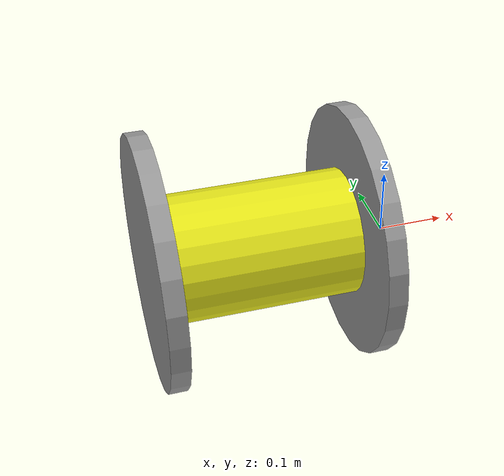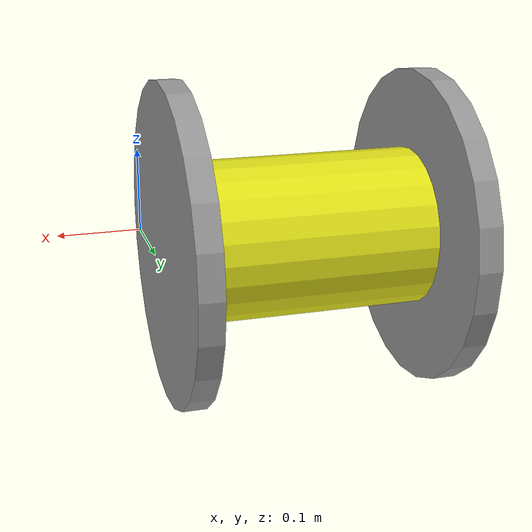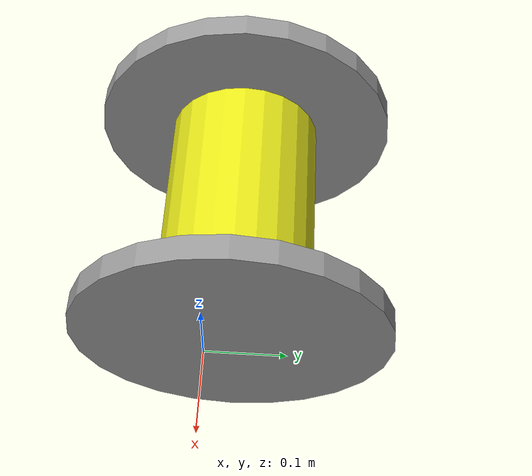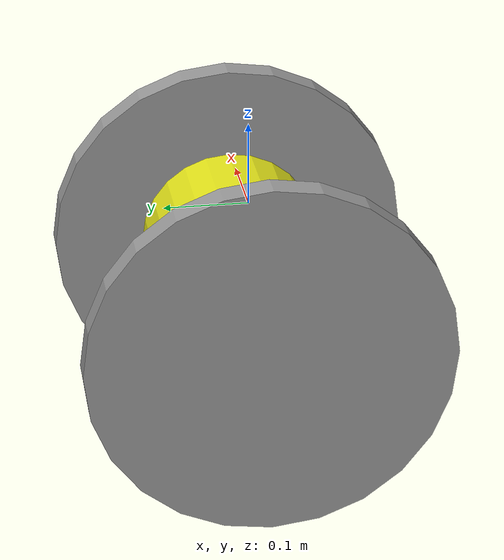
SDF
<?xml version='1.0'?>
<sdf version='1.7'>
  <model name='Robot2'>
    <link name='link_0'>
      <inertial>
        <mass>1</mass>
        <inertia>
          <ixx>0.145833</ixx>
          <ixy>0</ixy>
          <ixz>0</ixz>
          <iyy>0.145833</iyy>
          <iyz>0</iyz>
          <izz>0.125</izz>
        </inertia>
        <pose>0 0 0 0 -0 0</pose>
      </inertial>
      <pose>-0.195593 0.030583 -0.013331 3.14159 -1.57079 3.14159</pose>
      <gravity>1</gravity>
      <self_collide>0</self_collide>
      <kinematic>0</kinematic>
      <enable_wind>0</enable_wind>
      <visual name='visual'>
        <pose>0 0 0 0 -0 0</pose>
        <geometry>
          <cylinder>
            <radius>0.1</radius>
            <length>0.3</length>
          </cylinder>
        </geometry>
        <material>
          <lighting>1</lighting>
          <script>
            <uri>file://media/materials/scripts/gazebo.material</uri>
            <name>Gazebo/Grey</name>
          </script>
          <shader type='pixel'>
            <normal_map>__default__</normal_map>
          </shader>
          <ambient>0.5 0.5 0.3 1</ambient>
          <diffuse>0.9 0.9 0.1 1</diffuse>
          <specular>0.1 0.1 0.1 1</specular>
          <emissive>0 0 0 1</emissive>
        </material>
        <transparency>0</transparency>
        <cast_shadows>1</cast_shadows>
      </visual>
      <collision name='collision'>
        <laser_retro>0</laser_retro>
        <max_contacts>10</max_contacts>
        <pose>0 0 0 0 -0 0</pose>
        <geometry>
          <cylinder>
            <radius>0.1</radius>
            <length>0.3</length>
          </cylinder>
        </geometry>
        <surface>
          <friction>
            <ode>
              <mu>1</mu>
              <mu2>1</mu2>
              <fdir1>0 0 0</fdir1>
              <slip1>0</slip1>
              <slip2>0</slip2>
            </ode>
            <torsional>
              <coefficient>1</coefficient>
              <patch_radius>0</patch_radius>
              <surface_radius>0</surface_radius>
              <use_patch_radius>1</use_patch_radius>
              <ode>
                <slip>0</slip>
              </ode>
            </torsional>
          </friction>
          <bounce>
            <restitution_coefficient>0</restitution_coefficient>
            <threshold>1e+06</threshold>
          </bounce>
          <contact>
            <collide_without_contact>0</collide_without_contact>
            <collide_without_contact_bitmask>1</collide_without_contact_bitmask>
            <collide_bitmask>1</collide_bitmask>
            <ode>
              <soft_cfm>0</soft_cfm>
              <soft_erp>0.2</soft_erp>
              <kp>1e+13</kp>
              <kd>1</kd>
              <max_vel>0.01</max_vel>
              <min_depth>0</min_depth>
            </ode>
            <bullet>
              <split_impulse>1</split_impulse>
              <split_impulse_penetration_threshold>-0.01</split_impulse_penetration_threshold>
              <soft_cfm>0</soft_cfm>
              <soft_erp>0.2</soft_erp>
              <kp>1e+13</kp>
              <kd>1</kd>
            </bullet>
          </contact>
        </surface>
      </collision>
    </link>
    <link name='link_1'>
      <inertial>
        <mass>1</mass>
        <inertia>
          <ixx>0.145833</ixx>
          <ixy>0</ixy>
          <ixz>0</ixz>
          <iyy>0.145833</iyy>
          <iyz>0</iyz>
          <izz>0.125</izz>
        </inertia>
        <pose>0 0 0 0 -0 0</pose>
      </inertial>
      <pose>-0.035594 0.030582 -0.01333 3.14159 -1.57079 3.14159</pose>
      <gravity>1</gravity>
      <self_collide>0</self_collide>
      <kinematic>0</kinematic>
      <enable_wind>0</enable_wind>
      <visual name='visual'>
        <pose>0 0 0 0 -0 0</pose>
        <geometry>
          <cylinder>
            <radius>0.2</radius>
            <length>0.03</length>
          </cylinder>
        </geometry>
        <material>
          <lighting>1</lighting>
          <script>
            <uri>file://media/materials/scripts/gazebo.material</uri>
            <name>Gazebo/Grey</name>
          </script>
          <shader type='pixel'>
            <normal_map>__default__</normal_map>
          </shader>
          <ambient>0 0 0 1</ambient>
          <diffuse>0.01 0.01 0.01 1</diffuse>
          <specular>0 0 0 1</specular>
          <emissive>0 0 0 1</emissive>
        </material>
        <transparency>0</transparency>
        <cast_shadows>1</cast_shadows>
      </visual>
      <collision name='collision'>
        <laser_retro>0</laser_retro>
        <max_contacts>10</max_contacts>
        <pose>0 0 0 0 -0 0</pose>
        <geometry>
          <cylinder>
            <radius>0.2</radius>
            <length>0.03</length>
          </cylinder>
        </geometry>
        <surface>
          <friction>
            <ode>
              <mu>1</mu>
              <mu2>1</mu2>
              <fdir1>0 0 0</fdir1>
              <slip1>0</slip1>
              <slip2>0</slip2>
            </ode>
            <torsional>
              <coefficient>1</coefficient>
              <patch_radius>0</patch_radius>
              <surface_radius>0</surface_radius>
              <use_patch_radius>1</use_patch_radius>
              <ode>
                <slip>0</slip>
              </ode>
            </torsional>
          </friction>
          <bounce>
            <restitution_coefficient>0</restitution_coefficient>
            <threshold>1e+06</threshold>
          </bounce>
          <contact>
            <collide_without_contact>0</collide_without_contact>
            <collide_without_contact_bitmask>1</collide_without_contact_bitmask>
            <collide_bitmask>1</collide_bitmask>
            <ode>
              <soft_cfm>0</soft_cfm>
              <soft_erp>0.2</soft_erp>
              <kp>1e+13</kp>
              <kd>1</kd>
              <max_vel>0.01</max_vel>
              <min_depth>0</min_depth>
            </ode>
            <bullet>
              <split_impulse>1</split_impulse>
              <split_impulse_penetration_threshold>-0.01</split_impulse_penetration_threshold>
              <soft_cfm>0</soft_cfm>
              <soft_erp>0.2</soft_erp>
              <kp>1e+13</kp>
              <kd>1</kd>
            </bullet>
          </contact>
        </surface>
      </collision>
    </link>
    <link name='link_1_clone'>
      <inertial>
        <mass>1</mass>
        <inertia>
          <ixx>0.145833</ixx>
          <ixy>0</ixy>
          <ixz>0</ixz>
          <iyy>0.145833</iyy>
          <iyz>0</iyz>
          <izz>0.125</izz>
        </inertia>
        <pose>0 0 0 0 -0 0</pose>
      </inertial>
      <pose>-0.355593 0.030584 -0.013332 3.14159 -1.57079 3.14159</pose>
      <gravity>1</gravity>
      <self_collide>0</self_collide>
      <kinematic>0</kinematic>
      <enable_wind>0</enable_wind>
      <visual name='visual'>
        <pose>0 0 0 0 -0 0</pose>
        <geometry>
          <cylinder>
            <radius>0.2</radius>
            <length>0.03</length>
          </cylinder>
        </geometry>
        <material>
          <lighting>1</lighting>
          <script>
            <uri>file://media/materials/scripts/gazebo.material</uri>
            <name>Gazebo/Grey</name>
          </script>
          <shader type='pixel'>
            <normal_map>__default__</normal_map>
          </shader>
          <ambient>0 0 0 1</ambient>
          <diffuse>0.01 0.01 0.01 1</diffuse>
          <specular>0 0 0 1</specular>
          <emissive>0 0 0 1</emissive>
        </material>
        <transparency>0</transparency>
        <cast_shadows>1</cast_shadows>
      </visual>
      <collision name='collision'>
        <laser_retro>0</laser_retro>
        <max_contacts>10</max_contacts>
        <pose>0 0 0 0 -0 0</pose>
        <geometry>
          <cylinder>
            <radius>0.2</radius>
            <length>0.03</length>
          </cylinder>
        </geometry>
        <surface>
          <friction>
            <ode>
              <mu>1</mu>
              <mu2>1</mu2>
              <fdir1>0 0 0</fdir1>
              <slip1>0</slip1>
              <slip2>0</slip2>
            </ode>
            <torsional>
              <coefficient>1</coefficient>
              <patch_radius>0</patch_radius>
              <surface_radius>0</surface_radius>
              <use_patch_radius>1</use_patch_radius>
              <ode>
                <slip>0</slip>
              </ode>
            </torsional>
          </friction>
          <bounce>
            <restitution_coefficient>0</restitution_coefficient>
            <threshold>1e+06</threshold>
          </bounce>
          <contact>
            <collide_without_contact>0</collide_without_contact>
            <collide_without_contact_bitmask>1</collide_without_contact_bitmask>
            <collide_bitmask>1</collide_bitmask>
            <ode>
              <soft_cfm>0</soft_cfm>
              <soft_erp>0.2</soft_erp>
              <kp>1e+13</kp>
              <kd>1</kd>
              <max_vel>0.01</max_vel>
              <min_depth>0</min_depth>
            </ode>
            <bullet>
              <split_impulse>1</split_impulse>
              <split_impulse_penetration_threshold>-0.01</split_impulse_penetration_threshold>
              <soft_cfm>0</soft_cfm>
              <soft_erp>0.2</soft_erp>
              <kp>1e+13</kp>
              <kd>1</kd>
            </bullet>
          </contact>
        </surface>
      </collision>
    </link>
    <joint name='link_0_JOINT_0' type='revolute'>
      <parent>link_0</parent>
      <child>link_1</child>
      <pose>0 0 0 0 -0 0</pose>
      <axis>
        <xyz>1 0 0</xyz>
        <limit>
          <lower>-1.79769e+308</lower>
          <upper>1.79769e+308</upper>
          <effort>-1</effort>
          <velocity>-1</velocity>
        </limit>
        <dynamics>
          <spring_reference>0</spring_reference>
          <spring_stiffness>0</spring_stiffness>
          <damping>0</damping>
        </dynamics>
      </axis>
      <physics>
        <ode>
          <limit>
            <cfm>0</cfm>
            <erp>0.2</erp>
          </limit>
          <suspension>
            <cfm>0</cfm>
            <erp>0.2</erp>
          </suspension>
        </ode>
      </physics>
    </joint>
    <joint name='link_0_JOINT_1' type='revolute'>
      <parent>link_0</parent>
      <child>link_1_clone</child>
      <pose>0 0 0 0 -0 0</pose>
      <axis>
        <xyz>1 0 0</xyz>
        <limit>
          <lower>-1.79769e+308</lower>
          <upper>1.79769e+308</upper>
          <effort>-1</effort>
          <velocity>-1</velocity>
        </limit>
        <dynamics>
          <spring_reference>0</spring_reference>
          <spring_stiffness>0</spring_stiffness>
          <damping>0</damping>
        </dynamics>
      </axis>
      <physics>
        <ode>
          <limit>
            <cfm>0</cfm>
            <erp>0.2</erp>
          </limit>
          <suspension>
            <cfm>0</cfm>
            <erp>0.2</erp>
          </suspension>
        </ode>
      </physics>
    </joint>
    <static>0</static>
    <allow_auto_disable>1</allow_auto_disable>
  </model>
</sdf>
